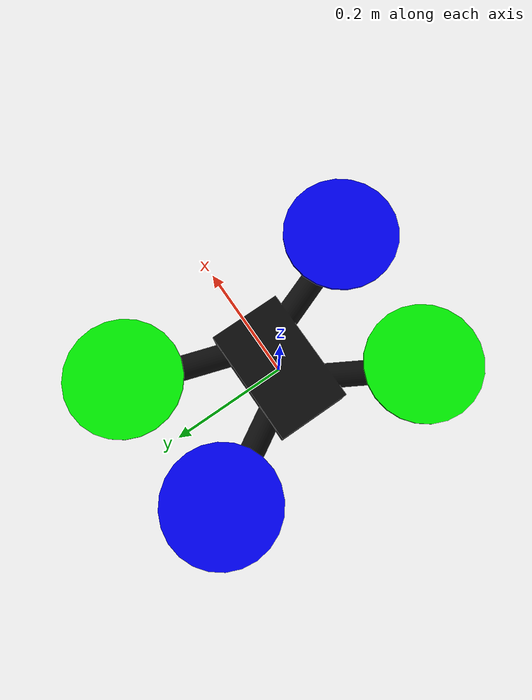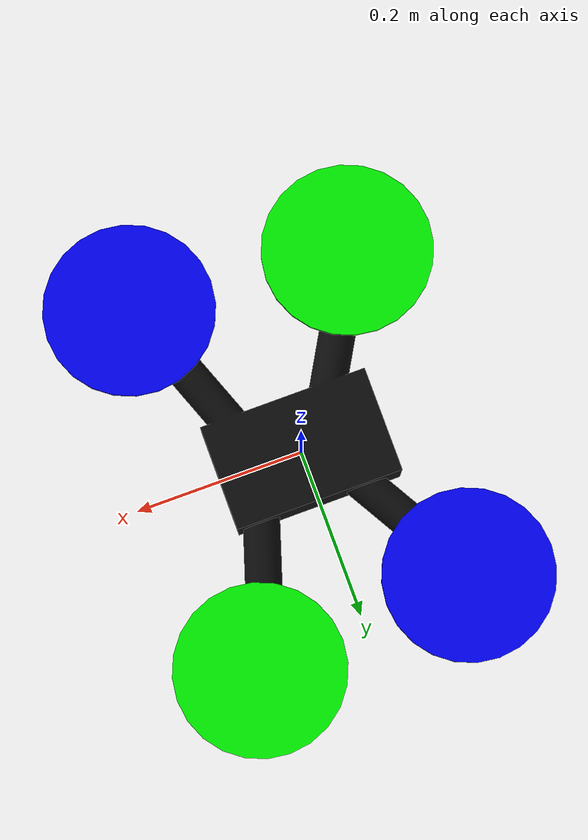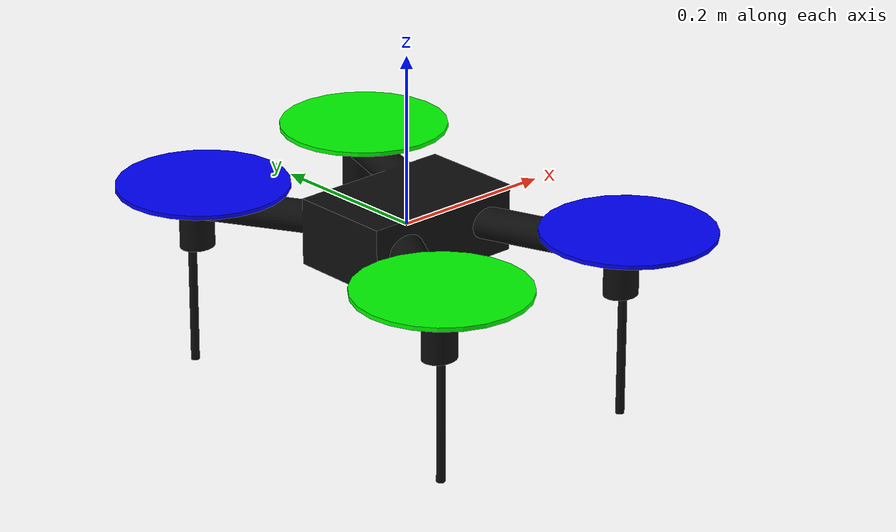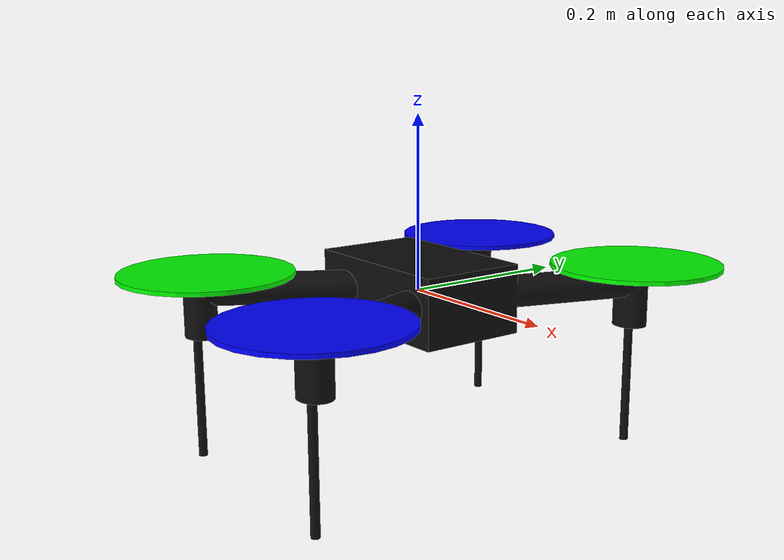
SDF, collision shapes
<?xml version='1.0'?>
<sdf version='1.9'>
  <model name='iris_with_standoffs'>
    <pose>0 0 0 0 0 0</pose>
    <link name='base_link'>
      <enable_wind>true</enable_wind>
      <velocity_decay>
        <linear>0.0</linear>
        <angular>0.0</angular>
      </velocity_decay>
      <inertial>
        <pose>0 0 0 0 0 0</pose>
        <mass>1.5</mass>
        <inertia>
          <ixx>0.008</ixx>
          <ixy>0</ixy>
          <ixz>0</ixz>
          <iyy>0.015</iyy>
          <iyz>0</iyz>
          <izz>0.017</izz>
        </inertia>
      </inertial>
      <collision name='base_collision'>
        <pose>0 0 0 0 0 0</pose>
        <geometry>
          <mesh>
            <uri>model://iris_with_standoffs/meshes/iris_collision.stl</uri>
          </mesh>
        </geometry>
        <surface>
          <contact>
            <ode>
              <max_vel>100.0</max_vel>
              <min_depth>0.001</min_depth>
            </ode>
          </contact>
          <friction>
            <ode>
              <mu>100000.0</mu>
              <mu2>100000.0</mu2>
            </ode>
          </friction>
        </surface>
      </collision>
      <collision name='front_left_leg_collision'>
        <pose>0.123 0.22 -0.11 0 0 0</pose>
        <geometry>
          <cylinder>
            <radius>0.005</radius>
            <length>0.17</length>
          </cylinder>
        </geometry>
        <surface>
          <contact>
            <ode>
              <max_vel>100.0</max_vel>
              <min_depth>0.001</min_depth>
            </ode>
          </contact>
          <friction>
            <ode>
              <mu>100000.0</mu>
              <mu2>100000.0</mu2>
            </ode>
          </friction>
        </surface>
      </collision>
      <collision name='front_right_leg_collision'>
        <pose>0.123 -0.22 -0.11 0 0 0</pose>
        <geometry>
          <cylinder>
            <radius>0.005</radius>
            <length>0.17</length>
          </cylinder>
        </geometry>
        <surface>
          <contact>
            <ode>
              <max_vel>100.0</max_vel>
              <min_depth>0.001</min_depth>
            </ode>
          </contact>
          <friction>
            <ode>
              <mu>100000.0</mu>
              <mu2>100000.0</mu2>
            </ode>
          </friction>
        </surface>
      </collision>
      <collision name='rear_left_leg_collision'>
        <pose>-0.140 0.21 -0.11 0 0 0</pose>
        <geometry>
          <cylinder>
            <radius>0.005</radius>
            <length>0.17</length>
          </cylinder>
        </geometry>
        <surface>
          <contact>
            <ode>
              <max_vel>100.0</max_vel>
              <min_depth>0.001</min_depth>
            </ode>
          </contact>
          <friction>
            <ode>
              <mu>100000.0</mu>
              <mu2>100000.0</mu2>
            </ode>
          </friction>
        </surface>
      </collision>
      <collision name='rear_right_leg_collision'>
        <pose>-0.140 -0.21 -0.11 0 0 0</pose>
        <geometry>
          <cylinder>
            <radius>0.005</radius>
            <length>0.17</length>
          </cylinder>
        </geometry>
        <surface>
          <contact>
            <ode>
              <max_vel>100.0</max_vel>
              <min_depth>0.001</min_depth>
            </ode>
          </contact>
          <friction>
            <ode>
              <mu>100000.0</mu>
              <mu2>100000.0</mu2>
            </ode>
          </friction>
        </surface>
      </collision>

      <visual name='base_visual'>
        <geometry>
          <mesh>
            <uri>model://iris_with_standoffs/meshes/iris.dae</uri>
          </mesh>
        </geometry>
        <material>
          <ambient>0.05 0.05 0.05</ambient>
          <diffuse>0.05 0.05 0.05</diffuse>
          <specular>1 1 1 1</specular>
          <pbr>
            <metal>
              <metalness>0.5</metalness>
              <roughness>0.5</roughness>
            </metal>
          </pbr>
        </material>
      </visual>
      <visual name='front_left_leg_visual'>
        <pose>0.123 0.22 -0.11 0 0 0</pose>
        <geometry>
          <cylinder>
            <radius>0.005</radius>
            <length>0.17</length>
          </cylinder>
        </geometry>
        <material>
          <ambient>0.05 0.05 0.05</ambient>
          <diffuse>0.05 0.05 0.05</diffuse>
          <specular>0.01 0.01 0.01 1.0</specular>
          <pbr>
            <metal>
              <metalness>0.5</metalness>
              <roughness>0.5</roughness>
            </metal>
          </pbr>
        </material>
      </visual>
      <visual name='front_right_leg_visual'>
        <pose>0.123 -0.22 -0.11 0 0 0</pose>
        <geometry>
          <cylinder>
            <radius>0.005</radius>
            <length>0.17</length>
          </cylinder>
        </geometry>
        <material>
          <ambient>0.05 0.05 0.05</ambient>
          <diffuse>0.05 0.05 0.05</diffuse>
          <specular>0.01 0.01 0.01 1.0</specular>
          <pbr>
            <metal>
              <metalness>0.5</metalness>
              <roughness>0.5</roughness>
            </metal>
          </pbr>
        </material>
      </visual>
      <visual name='rear_left_leg_visual'>
        <pose>-0.140 0.21 -0.11 0 0 0</pose>
        <geometry>
          <cylinder>
            <radius>0.005</radius>
            <length>0.17</length>
          </cylinder>
        </geometry>
        <material>
          <ambient>0.05 0.05 0.05</ambient>
          <diffuse>0.05 0.05 0.05</diffuse>
          <specular>0.01 0.01 0.01 1.0</specular>
          <pbr>
            <metal>
              <metalness>0.5</metalness>
              <roughness>0.5</roughness>
            </metal>
          </pbr>
        </material>
      </visual>
      <visual name='rear_right_leg_visual'>
        <pose>-0.140 -0.21 -0.11 0 0 0</pose>
        <geometry>
          <cylinder>
            <radius>0.005</radius>
            <length>0.17</length>
          </cylinder>
        </geometry>
        <material>
          <ambient>0.05 0.05 0.05</ambient>
          <diffuse>0.05 0.05 0.05</diffuse>
          <specular>0.01 0.01 0.01 1.0</specular>
          <pbr>
            <metal>
              <metalness>0.5</metalness>
              <roughness>0.5</roughness>
            </metal>
          </pbr>
        </material>
      </visual>

      <!-- Additional sensors -->
      <sensor name="air_pressure_sensor" type="air_pressure">
        <always_on>1</always_on>
        <update_rate>30</update_rate>
      </sensor>
      <sensor name="air_speed_sensor" type="air_speed">
        <always_on>1</always_on>
        <update_rate>30</update_rate>
      </sensor>
      <sensor name="altimeter_sensor" type="altimeter">
        <always_on>1</always_on>
        <update_rate>30</update_rate>
      </sensor>
      <sensor name="magnetometer_sensor" type="magnetometer">
        <always_on>1</always_on>
        <update_rate>30</update_rate>
      </sensor>
      <sensor name="navsat_sensor" type="navsat">
        <always_on>1</always_on>
        <update_rate>30</update_rate>
      </sensor>

    </link>
    <link name='imu_link'>
      <inertial>
        <pose>0 0 0 0 0 0</pose>
        <mass>0.15</mass>
        <inertia>
          <ixx>0.00001</ixx>
          <ixy>0</ixy>
          <ixz>0</ixz>
          <iyy>0.00002</iyy>
          <iyz>0</iyz>
          <izz>0.00002</izz>
        </inertia>
      </inertial>
      <sensor name="imu_sensor" type="imu">
        <pose degrees="true">0 0 0 180 0 0</pose>
        <always_on>1</always_on>
        <update_rate>1000.0</update_rate>
      </sensor>
    </link>
    <joint name='imu_joint' type='revolute'>
      <child>imu_link</child>
      <parent>base_link</parent>
      <axis>
        <xyz>0 0 1</xyz>
        <limit>
          <lower>0</lower>
          <upper>0</upper>
          <effort>0</effort>
          <velocity>0</velocity>
        </limit>
        <dynamics>
          <damping>1.0</damping>
        </dynamics>
      </axis>
    </joint>
    <link name='rotor_0'>
      <pose>0.13 -0.22 0.023 0 0 0</pose>
      <inertial>
        <pose>0 0 0 0 0 0</pose>
        <mass>0.025</mass>
        <inertia>
          <ixx>9.75e-06</ixx>
          <ixy>0</ixy>
          <ixz>0</ixz>
          <iyy>0.000166704</iyy>
          <iyz>0</iyz>
          <izz>0.000167604</izz>
        </inertia>
      </inertial>
      <collision name='collision'>
        <pose>0 0 0 0 0 0</pose>
        <geometry>
          <cylinder>
            <length>0.005</length>
            <radius>0.1</radius>
          </cylinder>
        </geometry>
      </collision>
      <visual name='visual'>
        <pose>0 0 0 0 0 0</pose>
        <geometry>
          <mesh>
            <scale>1 1 1</scale>
            <uri>model://iris_with_standoffs/meshes/iris_prop_ccw.dae</uri>
          </mesh>
        </geometry>
        <material>
          <ambient>0 0 1</ambient>
          <diffuse>0 0 1</diffuse>
          <specular>1 1 1 1</specular>
          <pbr>
            <metal>
              <metalness>0.5</metalness>
              <roughness>0.5</roughness>
            </metal>
          </pbr>
        </material>
      </visual>
    </link>
    <joint name='rotor_0_joint' type='revolute'>
      <child>rotor_0</child>
      <parent>base_link</parent>
      <axis>
        <xyz>0 0 1</xyz>
        <limit>
          <lower>-1e+16</lower>
          <upper>1e+16</upper>
        </limit>
        <dynamics>
          <damping>0.004</damping>
        </dynamics>
      </axis>
    </joint>
    <link name='rotor_1'>
      <pose>-0.13 0.2 0.023 0 0 0</pose>
      <inertial>
        <pose>0 0 0 0 0 0</pose>
        <mass>0.025</mass>
        <inertia>
          <ixx>9.75e-06</ixx>
          <ixy>0</ixy>
          <ixz>0</ixz>
          <iyy>0.000166704</iyy>
          <iyz>0</iyz>
          <izz>0.000167604</izz>
        </inertia>
      </inertial>
      <collision name='collision'>
        <pose>0 0 0 0 0 0</pose>
        <geometry>
          <cylinder>
            <length>0.005</length>
            <radius>0.1</radius>
          </cylinder>
        </geometry>
      </collision>
      <visual name='visual'>
        <pose>0 0 0 0 0 0</pose>
        <geometry>
          <mesh>
            <scale>1 1 1</scale>
            <uri>model://iris_with_standoffs/meshes/iris_prop_ccw.dae</uri>
          </mesh>
        </geometry>
        <material>
          <ambient>0 0 1 1</ambient>
          <diffuse>0 0 1 1</diffuse>
          <specular>1 1 1 1</specular>
          <pbr>
            <metal>
              <metalness>0.5</metalness>
              <roughness>0.5</roughness>
            </metal>
          </pbr>
        </material>
      </visual>
    </link>
    <joint name='rotor_1_joint' type='revolute'>
      <child>rotor_1</child>
      <parent>base_link</parent>
      <axis>
        <xyz>0 0 1</xyz>
        <limit>
          <lower>-1e+16</lower>
          <upper>1e+16</upper>
        </limit>
        <dynamics>
          <damping>0.004</damping>
        </dynamics>
      </axis>
    </joint>
    <link name='rotor_2'>
      <pose>0.13 0.22 0.023 0 0 0</pose>
      <inertial>
        <pose>0 0 0 0 0 0</pose>
        <mass>0.025</mass>
        <inertia>
          <ixx>9.75e-06</ixx>
          <ixy>0</ixy>
          <ixz>0</ixz>
          <iyy>0.000166704</iyy>
          <iyz>0</iyz>
          <izz>0.000167604</izz>
        </inertia>
      </inertial>
      <collision name='collision'>
        <pose>0 0 0 0 0 0</pose>
        <geometry>
          <cylinder>
            <length>0.005</length>
            <radius>0.1</radius>
          </cylinder>
        </geometry>
      </collision>
      <visual name='visual'>
        <pose>0 0 0 0 0 0</pose>
        <geometry>
          <mesh>
            <scale>1 1 1</scale>
            <uri>model://iris_with_standoffs/meshes/iris_prop_cw.dae</uri>
          </mesh>
        </geometry>
        <material>
          <ambient>0 1 0</ambient>
          <diffuse>0 1 0</diffuse>
          <specular>1 1 1 1</specular>
          <pbr>
            <metal>
              <metalness>0.5</metalness>
              <roughness>0.5</roughness>
            </metal>
          </pbr>
        </material>
      </visual>
    </link>
    <joint name='rotor_2_joint' type='revolute'>
      <child>rotor_2</child>
      <parent>base_link</parent>
      <axis>
        <xyz>0 0 1</xyz>
        <limit>
          <lower>-1e+16</lower>
          <upper>1e+16</upper>
        </limit>
        <dynamics>
          <damping>0.004</damping>
        </dynamics>
      </axis>
    </joint>
    <link name='rotor_3'>
      <pose>-0.13 -0.2 0.023 0 0 0</pose>
      <inertial>
        <pose>0 0 0 0 0 0</pose>
        <mass>0.025</mass>
        <inertia>
          <ixx>9.75e-06</ixx>
          <ixy>0</ixy>
          <ixz>0</ixz>
          <iyy>0.000166704</iyy>
          <iyz>0</iyz>
          <izz>0.000167604</izz>
        </inertia>
      </inertial>
      <collision name='collision'>
        <pose>0 0 0 0 0 0</pose>
        <geometry>
          <cylinder>
            <length>0.005</length>
            <radius>0.1</radius>
          </cylinder>
        </geometry>
      </collision>
      <visual name='visual'>
        <pose>0 0 0 0 0 0</pose>
        <geometry>
          <mesh>
            <scale>1 1 1</scale>
            <uri>model://iris_with_standoffs/meshes/iris_prop_cw.dae</uri>
          </mesh>
        </geometry>
        <material>
          <ambient>0 1 0</ambient>
          <diffuse>0 1 0</diffuse>
          <specular>1 1 1 1</specular>
          <pbr>
            <metal>
              <metalness>0.5</metalness>
              <roughness>0.5</roughness>
            </metal>
          </pbr>
        </material>
      </visual>
    </link>
    <joint name='rotor_3_joint' type='revolute'>
      <child>rotor_3</child>
      <parent>base_link</parent>
      <axis>
        <xyz>0 0 1</xyz>
        <limit>
          <lower>-1e+16</lower>
          <upper>1e+16</upper>
        </limit>
        <dynamics>
          <damping>0.004</damping>
        </dynamics>
      </axis>
    </joint>
  </model>
</sdf>
